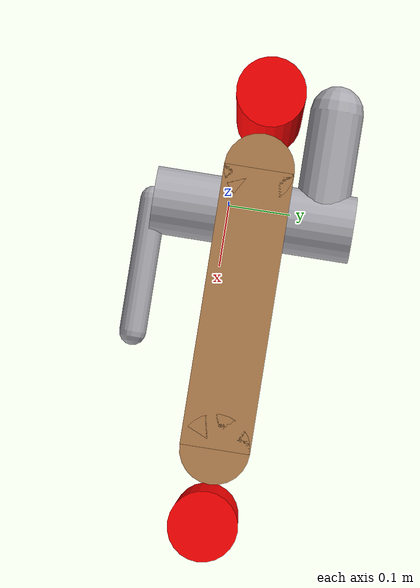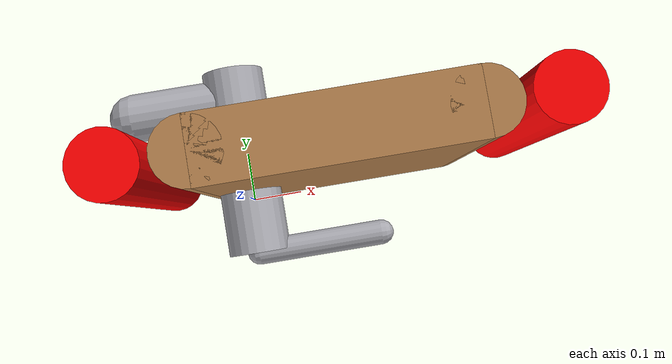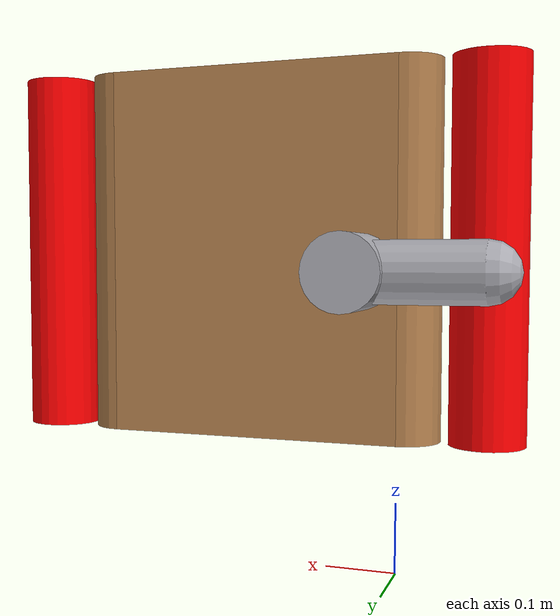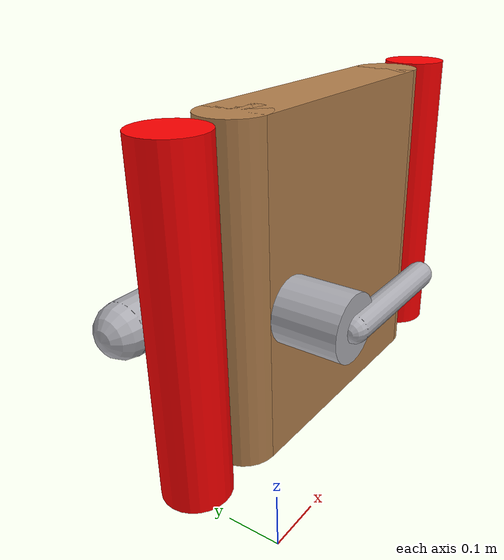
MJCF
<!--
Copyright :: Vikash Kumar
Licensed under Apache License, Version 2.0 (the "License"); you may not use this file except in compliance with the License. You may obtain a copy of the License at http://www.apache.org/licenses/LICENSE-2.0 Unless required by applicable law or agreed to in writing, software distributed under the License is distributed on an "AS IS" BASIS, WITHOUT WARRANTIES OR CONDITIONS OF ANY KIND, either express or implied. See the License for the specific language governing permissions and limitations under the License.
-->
<mujoco model="door">
    <include file='../common.xml'/>

    <asset>
        <texture type="cube" name="wood" file="../textures/wood.png" />
        <texture type="cube" name="foil" file="../textures/silverRaw.png" />
        <material name="MatWood" texture="wood" texrepeat="3 3" specular="0.4" shininess="0.1" />
        <material name="MatFoil" texture="foil" specular="1" shininess="0.3" rgba="0.9 0.9 0.9 1" />
    </asset>

    <worldbody>
        <body name="frame" pos="-0.107339 0.0435293 0.447376">
            <inertial pos="0.29 0 0" quat="0.5 0.5 0.5 0.5" mass="7.85398" diaginertia="0.923301 0.764585 0.168533" />
            <geom size="0.05 0.25" pos="0.6 0 0" type="cylinder" material="MatWood" rgba="1 0 0 1" />
            <geom size="0.05 0.25" pos="-0.02 0 0" type="cylinder" material="MatWood" rgba="1 0 0 1" />
            <site name="S_handle_target" pos="0.75 -0.5 -.18" size="0.025" group='3'/>
            <body name="door" pos="0.29 0 0">
                <inertial pos="0.0296816 -0.00152345 0" quat="0.701072 0 0 0.713091" mass="2.43455" diaginertia="0.0913751 0.0521615 0.043714" />
                <joint name="door_hinge" pos="0.31 0 0" axis="0 0 1" range="0 1.57" damping="1" frictionloss="2" />
                <geom size="0.2 0.05 0.25" type="box" friction="1 1 1" material="MatWood" />
                <geom size="0.05 0.25" pos="0.2 0 0" type="cylinder" material="MatWood" />
                <geom size="0.05 0.25" pos="-0.2 0 0" type="cylinder" material="MatWood" />
                <body name="latch" pos="-0.15 0 -0.025">
                    <inertial pos="-0.017762 0.0138544 0" quat="0.365653 0.605347 -0.36522 0.605365" mass="3.53743" diaginertia="0.0483771 0.0410001 0.0111013" />
                    <joint name="latch" pos="0 0 0" axis="0 1 0" range="0 1.8" frictionloss="5" />
                    <geom size="0.05 0.15" quat="0.707388 0.706825 0 0" type="cylinder" material="MatFoil" />
                    <geom size="0.02 0.1" pos="0.1 -0.15 0" quat="0.707388 0 0.706825 0" type="capsule" material="MatFoil" />
                    <geom size="0.04 0.07" pos="-0.1 0.1 0" quat="0.707388 0 0.706825 0" type="capsule" material="MatFoil" />
                    <site name="S_handle" pos="0.15 -0.15 0" size="0.025" group="3"/>
                    <body name="object" pos="0.15 -0.15 0"> <geom name="object" contype="0" conaffinity="0" mass="0" rgba="1 0 0 0" size=".025" type="sphere"/></body>
                </body>
            </body>
        </body>
    </worldbody>
</mujoco>

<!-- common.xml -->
<mujoco>
    <compiler angle="radian" />

    <asset>
        <material name="MatObject" specular="0.75" shininess="0.1" reflectance="0.5" rgba="0.9 0.7 0.5 1" />
    </asset>

    <default>
        <joint limited="true" margin="0.01" armature="0.001" damping="0.05" frictionloss="0.001" />
        <geom friction="1 0.5 0.01" margin="0.0005" density="1250" />
        <site size="0.005 0 0" rgba="0.4 0.9 0.4 1" />
        <general ctrllimited="true" ctrlrange="-1 1" />
        <tendon limited="true" />

        <default class="object_visual">
            <geom type="mesh" contype="0" conaffinity="0" mass="0" group="1" material="MatObject" />
        </default>

        <default class="object_contact">
            <geom type="mesh" density="1250" condim="4" rgba="0 1 0 0" />
        </default>

        <default class="freejoint">
            <joint limited="false" damping="0"/>
        </default>
    </default>

    <visual>
        <!-- free camera attributes -->
        <global fovy="25" />
    </visual>
</mujoco>
